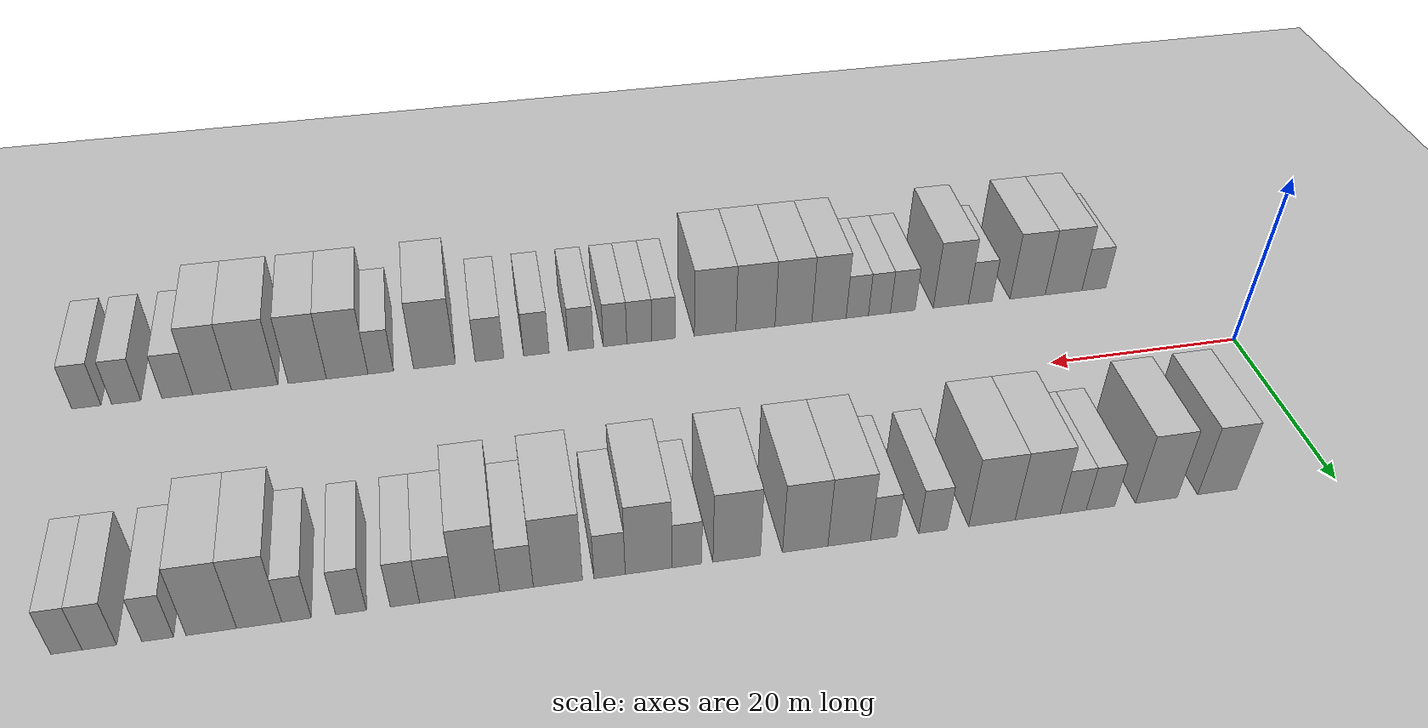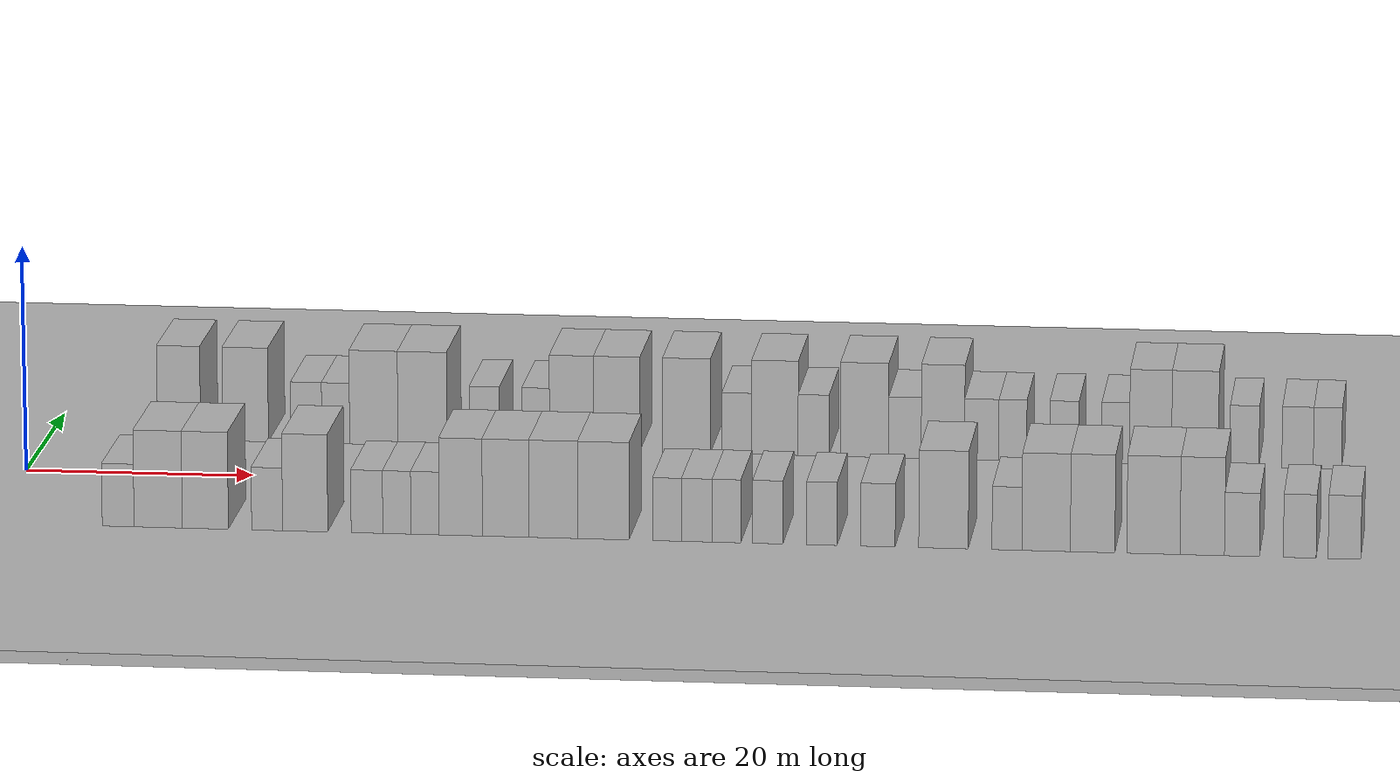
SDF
<sdf version="1.6">
 <world name="default">
  <include><name>ground_plane_1</name><uri>model://HANNAS_ground_plane</uri></include>
  <include>
   <name>ground_plane_2</name>
   <uri>model://HANNAS_ground_plane</uri>
   <pose>100 0 0  0 0 0</pose>
  </include>
  <model name="building_1">
   <static>1</static>
   <pose>11.9177 15.0000 0 0.000000 0.000000 1.570796</pose>
   <link name="link">
    <pose>0 0 4.50 0 0 0</pose>
    <collision name="collision"><geometry><box><size>10.0000 3.8354 9.0000</size></box></geometry></collision>
    <visual name="visual">
     <cast_shadows>0</cast_shadows>
     <geometry><box><size>10.0000 3.8354 9.0000</size></box></geometry>
     <material>
      <script>
       <uri>model://HANNAS_wall/materials/scripts</uri>
       <uri>model://HANNAS_wall/materials/textures</uri>
       <name>vrc/HANNAS_wall</name>
      </script>
     </material>
    </visual>
   </link>
  </model>
  <model name="building_2">
   <static>1</static>
   <pose>17.8606 15.0000 0 0.000000 0.000000 1.570796</pose>
   <link name="link">
    <pose>0 0 4.50 0 0 0</pose>
    <collision name="collision"><geometry><box><size>10.0000 4.0505 9.0000</size></box></geometry></collision>
    <visual name="visual">
     <cast_shadows>0</cast_shadows>
     <geometry><box><size>10.0000 4.0505 9.0000</size></box></geometry>
     <material>
      <script>
       <uri>model://HANNAS_wall/materials/scripts</uri>
       <uri>model://HANNAS_wall/materials/textures</uri>
       <name>vrc/HANNAS_wall</name>
      </script>
     </material>
    </visual>
   </link>
  </model>
  <model name="building_3">
   <static>1</static>
   <pose>23.2606 15.0000 0 0.000000 0.000000 1.570796</pose>
   <link name="link">
    <pose>0 0 3.00 0 0 0</pose>
    <collision name="collision"><geometry><box><size>10.0000 2.7494 6.0000</size></box></geometry></collision>
    <visual name="visual">
     <cast_shadows>0</cast_shadows>
     <geometry><box><size>10.0000 2.7494 6.0000</size></box></geometry>
     <material>
      <script>
       <uri>model://HANNAS_wall/materials/scripts</uri>
       <uri>model://HANNAS_wall/materials/textures</uri>
       <name>vrc/HANNAS_wall</name>
      </script>
     </material>
    </visual>
   </link>
  </model>
  <model name="building_4">
   <static>1</static>
   <pose>25.8726 15.0000 0 0.000000 0.000000 1.570796</pose>
   <link name="link">
    <pose>0 0 3.00 0 0 0</pose>
    <collision name="collision"><geometry><box><size>10.0000 2.4745 6.0000</size></box></geometry></collision>
    <visual name="visual">
     <cast_shadows>0</cast_shadows>
     <geometry><box><size>10.0000 2.4745 6.0000</size></box></geometry>
     <material>
      <script>
       <uri>model://HANNAS_wall/materials/scripts</uri>
       <uri>model://HANNAS_wall/materials/textures</uri>
       <name>vrc/HANNAS_wall</name>
      </script>
     </material>
    </visual>
   </link>
  </model>
  <model name="building_5">
   <static>1</static>
   <pose>29.2532 15.0000 0 0.000000 0.000000 1.570796</pose>
   <link name="link">
    <pose>0 0 4.50 0 0 0</pose>
    <collision name="collision"><geometry><box><size>10.0000 4.2869 9.0000</size></box></geometry></collision>
    <visual name="visual">
     <cast_shadows>0</cast_shadows>
     <geometry><box><size>10.0000 4.2869 9.0000</size></box></geometry>
     <material>
      <script>
       <uri>model://HANNAS_wall/materials/scripts</uri>
       <uri>model://HANNAS_wall/materials/textures</uri>
       <name>vrc/HANNAS_wall</name>
      </script>
     </material>
    </visual>
   </link>
  </model>
  <model name="building_6">
   <static>1</static>
   <pose>33.5742 15.0000 0 0.000000 0.000000 1.570796</pose>
   <link name="link">
    <pose>0 0 4.50 0 0 0</pose>
    <collision name="collision"><geometry><box><size>10.0000 4.3551 9.0000</size></box></geometry></collision>
    <visual name="visual">
     <cast_shadows>0</cast_shadows>
     <geometry><box><size>10.0000 4.3551 9.0000</size></box></geometry>
     <material>
      <script>
       <uri>model://HANNAS_wall/materials/scripts</uri>
       <uri>model://HANNAS_wall/materials/textures</uri>
       <name>vrc/HANNAS_wall</name>
      </script>
     </material>
    </visual>
   </link>
  </model>
  <model name="building_7">
   <static>1</static>
   <pose>39.0809 15.0000 0 0.000000 0.000000 1.570796</pose>
   <link name="link">
    <pose>0 0 3.00 0 0 0</pose>
    <collision name="collision"><geometry><box><size>10.0000 2.6583 6.0000</size></box></geometry></collision>
    <visual name="visual">
     <cast_shadows>0</cast_shadows>
     <geometry><box><size>10.0000 2.6583 6.0000</size></box></geometry>
     <material>
      <script>
       <uri>model://HANNAS_wall/materials/scripts</uri>
       <uri>model://HANNAS_wall/materials/textures</uri>
       <name>vrc/HANNAS_wall</name>
      </script>
     </material>
    </visual>
   </link>
  </model>
  <model name="building_8">
   <static>1</static>
   <pose>43.6283 15.0000 0 0.000000 0.000000 1.570796</pose>
   <link name="link">
    <pose>0 0 3.00 0 0 0</pose>
    <collision name="collision"><geometry><box><size>10.0000 2.4365 6.0000</size></box></geometry></collision>
    <visual name="visual">
     <cast_shadows>0</cast_shadows>
     <geometry><box><size>10.0000 2.4365 6.0000</size></box></geometry>
     <material>
      <script>
       <uri>model://HANNAS_wall/materials/scripts</uri>
       <uri>model://HANNAS_wall/materials/textures</uri>
       <name>vrc/HANNAS_wall</name>
      </script>
     </material>
    </visual>
   </link>
  </model>
  <model name="building_9">
   <static>1</static>
   <pose>46.7933 15.0000 0 0.000000 0.000000 1.570796</pose>
   <link name="link">
    <pose>0 0 4.50 0 0 0</pose>
    <collision name="collision"><geometry><box><size>10.0000 3.8934 9.0000</size></box></geometry></collision>
    <visual name="visual">
     <cast_shadows>0</cast_shadows>
     <geometry><box><size>10.0000 3.8934 9.0000</size></box></geometry>
     <material>
      <script>
       <uri>model://HANNAS_wall/materials/scripts</uri>
       <uri>model://HANNAS_wall/materials/textures</uri>
       <name>vrc/HANNAS_wall</name>
      </script>
     </material>
    </visual>
   </link>
  </model>
  <model name="building_10">
   <static>1</static>
   <pose>50.7917 15.0000 0 0.000000 0.000000 1.570796</pose>
   <link name="link">
    <pose>0 0 4.50 0 0 0</pose>
    <collision name="collision"><geometry><box><size>10.0000 4.1034 9.0000</size></box></geometry></collision>
    <visual name="visual">
     <cast_shadows>0</cast_shadows>
     <geometry><box><size>10.0000 4.1034 9.0000</size></box></geometry>
     <material>
      <script>
       <uri>model://HANNAS_wall/materials/scripts</uri>
       <uri>model://HANNAS_wall/materials/textures</uri>
       <name>vrc/HANNAS_wall</name>
      </script>
     </material>
    </visual>
   </link>
  </model>
  <model name="building_11">
   <static>1</static>
   <pose>56.9560 15.0000 0 0.000000 0.000000 1.570796</pose>
   <link name="link">
    <pose>0 0 4.50 0 0 0</pose>
    <collision name="collision"><geometry><box><size>10.0000 4.2253 9.0000</size></box></geometry></collision>
    <visual name="visual">
     <cast_shadows>0</cast_shadows>
     <geometry><box><size>10.0000 4.2253 9.0000</size></box></geometry>
     <material>
      <script>
       <uri>model://HANNAS_wall/materials/scripts</uri>
       <uri>model://HANNAS_wall/materials/textures</uri>
       <name>vrc/HANNAS_wall</name>
      </script>
     </material>
    </visual>
   </link>
  </model>
  <model name="building_12">
   <static>1</static>
   <pose>61.3837 15.0000 0 0.000000 0.000000 1.570796</pose>
   <link name="link">
    <pose>0 0 3.00 0 0 0</pose>
    <collision name="collision"><geometry><box><size>10.0000 2.6300 6.0000</size></box></geometry></collision>
    <visual name="visual">
     <cast_shadows>0</cast_shadows>
     <geometry><box><size>10.0000 2.6300 6.0000</size></box></geometry>
     <material>
      <script>
       <uri>model://HANNAS_wall/materials/scripts</uri>
       <uri>model://HANNAS_wall/materials/textures</uri>
       <name>vrc/HANNAS_wall</name>
      </script>
     </material>
    </visual>
   </link>
  </model>
  <model name="building_13">
   <static>1</static>
   <pose>64.7471 15.0000 0 0.000000 0.000000 1.570796</pose>
   <link name="link">
    <pose>0 0 4.50 0 0 0</pose>
    <collision name="collision"><geometry><box><size>10.0000 4.0969 9.0000</size></box></geometry></collision>
    <visual name="visual">
     <cast_shadows>0</cast_shadows>
     <geometry><box><size>10.0000 4.0969 9.0000</size></box></geometry>
     <material>
      <script>
       <uri>model://HANNAS_wall/materials/scripts</uri>
       <uri>model://HANNAS_wall/materials/textures</uri>
       <name>vrc/HANNAS_wall</name>
      </script>
     </material>
    </visual>
   </link>
  </model>
  <model name="building_14">
   <static>1</static>
   <pose>68.1561 15.0000 0 0.000000 0.000000 1.570796</pose>
   <link name="link">
    <pose>0 0 3.00 0 0 0</pose>
    <collision name="collision"><geometry><box><size>10.0000 2.7211 6.0000</size></box></geometry></collision>
    <visual name="visual">
     <cast_shadows>0</cast_shadows>
     <geometry><box><size>10.0000 2.7211 6.0000</size></box></geometry>
     <material>
      <script>
       <uri>model://HANNAS_wall/materials/scripts</uri>
       <uri>model://HANNAS_wall/materials/textures</uri>
       <name>vrc/HANNAS_wall</name>
      </script>
     </material>
    </visual>
   </link>
  </model>
  <model name="building_15">
   <static>1</static>
   <pose>72.6376 15.0000 0 0.000000 0.000000 1.570796</pose>
   <link name="link">
    <pose>0 0 4.50 0 0 0</pose>
    <collision name="collision"><geometry><box><size>10.0000 4.2419 9.0000</size></box></geometry></collision>
    <visual name="visual">
     <cast_shadows>0</cast_shadows>
     <geometry><box><size>10.0000 4.2419 9.0000</size></box></geometry>
     <material>
      <script>
       <uri>model://HANNAS_wall/materials/scripts</uri>
       <uri>model://HANNAS_wall/materials/textures</uri>
       <name>vrc/HANNAS_wall</name>
      </script>
     </material>
    </visual>
   </link>
  </model>
  <model name="building_16">
   <static>1</static>
   <pose>76.1897 15.0000 0 0.000000 0.000000 1.570796</pose>
   <link name="link">
    <pose>0 0 3.00 0 0 0</pose>
    <collision name="collision"><geometry><box><size>10.0000 2.8624 6.0000</size></box></geometry></collision>
    <visual name="visual">
     <cast_shadows>0</cast_shadows>
     <geometry><box><size>10.0000 2.8624 6.0000</size></box></geometry>
     <material>
      <script>
       <uri>model://HANNAS_wall/materials/scripts</uri>
       <uri>model://HANNAS_wall/materials/textures</uri>
       <name>vrc/HANNAS_wall</name>
      </script>
     </material>
    </visual>
   </link>
  </model>
  <model name="building_17">
   <static>1</static>
   <pose>79.5258 15.0000 0 0.000000 0.000000 1.570796</pose>
   <link name="link">
    <pose>0 0 4.50 0 0 0</pose>
    <collision name="collision"><geometry><box><size>10.0000 3.8097 9.0000</size></box></geometry></collision>
    <visual name="visual">
     <cast_shadows>0</cast_shadows>
     <geometry><box><size>10.0000 3.8097 9.0000</size></box></geometry>
     <material>
      <script>
       <uri>model://HANNAS_wall/materials/scripts</uri>
       <uri>model://HANNAS_wall/materials/textures</uri>
       <name>vrc/HANNAS_wall</name>
      </script>
     </material>
    </visual>
   </link>
  </model>
  <model name="building_18">
   <static>1</static>
   <pose>82.9254 15.0000 0 0.000000 0.000000 1.570796</pose>
   <link name="link">
    <pose>0 0 3.00 0 0 0</pose>
    <collision name="collision"><geometry><box><size>10.0000 2.9894 6.0000</size></box></geometry></collision>
    <visual name="visual">
     <cast_shadows>0</cast_shadows>
     <geometry><box><size>10.0000 2.9894 6.0000</size></box></geometry>
     <material>
      <script>
       <uri>model://HANNAS_wall/materials/scripts</uri>
       <uri>model://HANNAS_wall/materials/textures</uri>
       <name>vrc/HANNAS_wall</name>
      </script>
     </material>
    </visual>
   </link>
  </model>
  <model name="building_19">
   <static>1</static>
   <pose>85.6485 15.0000 0 0.000000 0.000000 1.570796</pose>
   <link name="link">
    <pose>0 0 3.00 0 0 0</pose>
    <collision name="collision"><geometry><box><size>10.0000 2.4570 6.0000</size></box></geometry></collision>
    <visual name="visual">
     <cast_shadows>0</cast_shadows>
     <geometry><box><size>10.0000 2.4570 6.0000</size></box></geometry>
     <material>
      <script>
       <uri>model://HANNAS_wall/materials/scripts</uri>
       <uri>model://HANNAS_wall/materials/textures</uri>
       <name>vrc/HANNAS_wall</name>
      </script>
     </material>
    </visual>
   </link>
  </model>
  <model name="building_20">
   <static>1</static>
   <pose>90.1554 15.0000 0 0.000000 0.000000 1.570796</pose>
   <link name="link">
    <pose>0 0 3.00 0 0 0</pose>
    <collision name="collision"><geometry><box><size>10.0000 2.5568 6.0000</size></box></geometry></collision>
    <visual name="visual">
     <cast_shadows>0</cast_shadows>
     <geometry><box><size>10.0000 2.5568 6.0000</size></box></geometry>
     <material>
      <script>
       <uri>model://HANNAS_wall/materials/scripts</uri>
       <uri>model://HANNAS_wall/materials/textures</uri>
       <name>vrc/HANNAS_wall</name>
      </script>
     </material>
    </visual>
   </link>
  </model>
  <model name="building_21">
   <static>1</static>
   <pose>94.6502 15.0000 0 0.000000 0.000000 1.570796</pose>
   <link name="link">
    <pose>0 0 3.00 0 0 0</pose>
    <collision name="collision"><geometry><box><size>10.0000 2.4329 6.0000</size></box></geometry></collision>
    <visual name="visual">
     <cast_shadows>0</cast_shadows>
     <geometry><box><size>10.0000 2.4329 6.0000</size></box></geometry>
     <material>
      <script>
       <uri>model://HANNAS_wall/materials/scripts</uri>
       <uri>model://HANNAS_wall/materials/textures</uri>
       <name>vrc/HANNAS_wall</name>
      </script>
     </material>
    </visual>
   </link>
  </model>
  <model name="building_22">
   <static>1</static>
   <pose>97.7045 15.0000 0 0.000000 0.000000 1.570796</pose>
   <link name="link">
    <pose>0 0 4.50 0 0 0</pose>
    <collision name="collision"><geometry><box><size>10.0000 3.6756 9.0000</size></box></geometry></collision>
    <visual name="visual">
     <cast_shadows>0</cast_shadows>
     <geometry><box><size>10.0000 3.6756 9.0000</size></box></geometry>
     <material>
      <script>
       <uri>model://HANNAS_wall/materials/scripts</uri>
       <uri>model://HANNAS_wall/materials/textures</uri>
       <name>vrc/HANNAS_wall</name>
      </script>
     </material>
    </visual>
   </link>
  </model>
  <model name="building_23">
   <static>1</static>
   <pose>101.5891 15.0000 0 0.000000 0.000000 1.570796</pose>
   <link name="link">
    <pose>0 0 4.50 0 0 0</pose>
    <collision name="collision"><geometry><box><size>10.0000 4.0937 9.0000</size></box></geometry></collision>
    <visual name="visual">
     <cast_shadows>0</cast_shadows>
     <geometry><box><size>10.0000 4.0937 9.0000</size></box></geometry>
     <material>
      <script>
       <uri>model://HANNAS_wall/materials/scripts</uri>
       <uri>model://HANNAS_wall/materials/textures</uri>
       <name>vrc/HANNAS_wall</name>
      </script>
     </material>
    </visual>
   </link>
  </model>
  <model name="building_24">
   <static>1</static>
   <pose>105.9074 15.0000 0 0.000000 0.000000 1.570796</pose>
   <link name="link">
    <pose>0 0 3.00 0 0 0</pose>
    <collision name="collision"><geometry><box><size>10.0000 2.5429 6.0000</size></box></geometry></collision>
    <visual name="visual">
     <cast_shadows>0</cast_shadows>
     <geometry><box><size>10.0000 2.5429 6.0000</size></box></geometry>
     <material>
      <script>
       <uri>model://HANNAS_wall/materials/scripts</uri>
       <uri>model://HANNAS_wall/materials/textures</uri>
       <name>vrc/HANNAS_wall</name>
      </script>
     </material>
    </visual>
   </link>
  </model>
  <model name="building_25">
   <static>1</static>
   <pose>110.5502 15.0000 0 0.000000 0.000000 1.570796</pose>
   <link name="link">
    <pose>0 0 3.00 0 0 0</pose>
    <collision name="collision"><geometry><box><size>10.0000 2.7427 6.0000</size></box></geometry></collision>
    <visual name="visual">
     <cast_shadows>0</cast_shadows>
     <geometry><box><size>10.0000 2.7427 6.0000</size></box></geometry>
     <material>
      <script>
       <uri>model://HANNAS_wall/materials/scripts</uri>
       <uri>model://HANNAS_wall/materials/textures</uri>
       <name>vrc/HANNAS_wall</name>
      </script>
     </material>
    </visual>
   </link>
  </model>
  <model name="building_26">
   <static>1</static>
   <pose>113.1542 15.0000 0 0.000000 0.000000 1.570796</pose>
   <link name="link">
    <pose>0 0 3.00 0 0 0</pose>
    <collision name="collision"><geometry><box><size>10.0000 2.4653 6.0000</size></box></geometry></collision>
    <visual name="visual">
     <cast_shadows>0</cast_shadows>
     <geometry><box><size>10.0000 2.4653 6.0000</size></box></geometry>
     <material>
      <script>
       <uri>model://HANNAS_wall/materials/scripts</uri>
       <uri>model://HANNAS_wall/materials/textures</uri>
       <name>vrc/HANNAS_wall</name>
      </script>
     </material>
    </visual>
   </link>
  </model>
  <model name="building_52">
   <static>1</static>
   <pose>11.3738 -15.0000 0 0.000000 0.000000 1.570796</pose>
   <link name="link">
    <pose>0 0 3.00 0 0 0</pose>
    <collision name="collision"><geometry><box><size>10.0000 2.7475 6.0000</size></box></geometry></collision>
    <visual name="visual">
     <cast_shadows>0</cast_shadows>
     <geometry><box><size>10.0000 2.7475 6.0000</size></box></geometry>
     <material>
      <script>
       <uri>model://HANNAS_wall/materials/scripts</uri>
       <uri>model://HANNAS_wall/materials/textures</uri>
       <name>vrc/HANNAS_wall</name>
      </script>
     </material>
    </visual>
   </link>
  </model>
  <model name="building_53">
   <static>1</static>
   <pose>14.8209 -15.0000 0 0.000000 0.000000 1.570796</pose>
   <link name="link">
    <pose>0 0 4.50 0 0 0</pose>
    <collision name="collision"><geometry><box><size>10.0000 4.1468 9.0000</size></box></geometry></collision>
    <visual name="visual">
     <cast_shadows>0</cast_shadows>
     <geometry><box><size>10.0000 4.1468 9.0000</size></box></geometry>
     <material>
      <script>
       <uri>model://HANNAS_wall/materials/scripts</uri>
       <uri>model://HANNAS_wall/materials/textures</uri>
       <name>vrc/HANNAS_wall</name>
      </script>
     </material>
    </visual>
   </link>
  </model>
  <model name="building_54">
   <static>1</static>
   <pose>18.8767 -15.0000 0 0.000000 0.000000 1.570796</pose>
   <link name="link">
    <pose>0 0 4.50 0 0 0</pose>
    <collision name="collision"><geometry><box><size>10.0000 3.9647 9.0000</size></box></geometry></collision>
    <visual name="visual">
     <cast_shadows>0</cast_shadows>
     <geometry><box><size>10.0000 3.9647 9.0000</size></box></geometry>
     <material>
      <script>
       <uri>model://HANNAS_wall/materials/scripts</uri>
       <uri>model://HANNAS_wall/materials/textures</uri>
       <name>vrc/HANNAS_wall</name>
      </script>
     </material>
    </visual>
   </link>
  </model>
  <model name="building_55">
   <static>1</static>
   <pose>24.1866 -15.0000 0 0.000000 0.000000 1.570796</pose>
   <link name="link">
    <pose>0 0 3.00 0 0 0</pose>
    <collision name="collision"><geometry><box><size>10.0000 2.6551 6.0000</size></box></geometry></collision>
    <visual name="visual">
     <cast_shadows>0</cast_shadows>
     <geometry><box><size>10.0000 2.6551 6.0000</size></box></geometry>
     <material>
      <script>
       <uri>model://HANNAS_wall/materials/scripts</uri>
       <uri>model://HANNAS_wall/materials/textures</uri>
       <name>vrc/HANNAS_wall</name>
      </script>
     </material>
    </visual>
   </link>
  </model>
  <model name="building_56">
   <static>1</static>
   <pose>27.4546 -15.0000 0 0.000000 0.000000 1.570796</pose>
   <link name="link">
    <pose>0 0 4.50 0 0 0</pose>
    <collision name="collision"><geometry><box><size>10.0000 3.8810 9.0000</size></box></geometry></collision>
    <visual name="visual">
     <cast_shadows>0</cast_shadows>
     <geometry><box><size>10.0000 3.8810 9.0000</size></box></geometry>
     <material>
      <script>
       <uri>model://HANNAS_wall/materials/scripts</uri>
       <uri>model://HANNAS_wall/materials/textures</uri>
       <name>vrc/HANNAS_wall</name>
      </script>
     </material>
    </visual>
   </link>
  </model>
  <model name="building_57">
   <static>1</static>
   <pose>32.7504 -15.0000 0 0.000000 0.000000 1.570796</pose>
   <link name="link">
    <pose>0 0 3.00 0 0 0</pose>
    <collision name="collision"><geometry><box><size>10.0000 2.7106 6.0000</size></box></geometry></collision>
    <visual name="visual">
     <cast_shadows>0</cast_shadows>
     <geometry><box><size>10.0000 2.7106 6.0000</size></box></geometry>
     <material>
      <script>
       <uri>model://HANNAS_wall/materials/scripts</uri>
       <uri>model://HANNAS_wall/materials/textures</uri>
       <name>vrc/HANNAS_wall</name>
      </script>
     </material>
    </visual>
   </link>
  </model>
  <model name="building_58">
   <static>1</static>
   <pose>35.3084 -15.0000 0 0.000000 0.000000 1.570796</pose>
   <link name="link">
    <pose>0 0 3.00 0 0 0</pose>
    <collision name="collision"><geometry><box><size>10.0000 2.4053 6.0000</size></box></geometry></collision>
    <visual name="visual">
     <cast_shadows>0</cast_shadows>
     <geometry><box><size>10.0000 2.4053 6.0000</size></box></geometry>
     <material>
      <script>
       <uri>model://HANNAS_wall/materials/scripts</uri>
       <uri>model://HANNAS_wall/materials/textures</uri>
       <name>vrc/HANNAS_wall</name>
      </script>
     </material>
    </visual>
   </link>
  </model>
  <model name="building_59">
   <static>1</static>
   <pose>37.7224 -15.0000 0 0.000000 0.000000 1.570796</pose>
   <link name="link">
    <pose>0 0 3.00 0 0 0</pose>
    <collision name="collision"><geometry><box><size>10.0000 2.4227 6.0000</size></box></geometry></collision>
    <visual name="visual">
     <cast_shadows>0</cast_shadows>
     <geometry><box><size>10.0000 2.4227 6.0000</size></box></geometry>
     <material>
      <script>
       <uri>model://HANNAS_wall/materials/scripts</uri>
       <uri>model://HANNAS_wall/materials/textures</uri>
       <name>vrc/HANNAS_wall</name>
      </script>
     </material>
    </visual>
   </link>
  </model>
  <model name="building_60">
   <static>1</static>
   <pose>40.7818 -15.0000 0 0.000000 0.000000 1.570796</pose>
   <link name="link">
    <pose>0 0 4.50 0 0 0</pose>
    <collision name="collision"><geometry><box><size>10.0000 3.6961 9.0000</size></box></geometry></collision>
    <visual name="visual">
     <cast_shadows>0</cast_shadows>
     <geometry><box><size>10.0000 3.6961 9.0000</size></box></geometry>
     <material>
      <script>
       <uri>model://HANNAS_wall/materials/scripts</uri>
       <uri>model://HANNAS_wall/materials/textures</uri>
       <name>vrc/HANNAS_wall</name>
      </script>
     </material>
    </visual>
   </link>
  </model>
  <model name="building_61">
   <static>1</static>
   <pose>44.6154 -15.0000 0 0.000000 0.000000 1.570796</pose>
   <link name="link">
    <pose>0 0 4.50 0 0 0</pose>
    <collision name="collision"><geometry><box><size>10.0000 3.9710 9.0000</size></box></geometry></collision>
    <visual name="visual">
     <cast_shadows>0</cast_shadows>
     <geometry><box><size>10.0000 3.9710 9.0000</size></box></geometry>
     <material>
      <script>
       <uri>model://HANNAS_wall/materials/scripts</uri>
       <uri>model://HANNAS_wall/materials/textures</uri>
       <name>vrc/HANNAS_wall</name>
      </script>
     </material>
    </visual>
   </link>
  </model>
  <model name="building_62">
   <static>1</static>
   <pose>48.6823 -15.0000 0 0.000000 0.000000 1.570796</pose>
   <link name="link">
    <pose>0 0 4.50 0 0 0</pose>
    <collision name="collision"><geometry><box><size>10.0000 4.1629 9.0000</size></box></geometry></collision>
    <visual name="visual">
     <cast_shadows>0</cast_shadows>
     <geometry><box><size>10.0000 4.1629 9.0000</size></box></geometry>
     <material>
      <script>
       <uri>model://HANNAS_wall/materials/scripts</uri>
       <uri>model://HANNAS_wall/materials/textures</uri>
       <name>vrc/HANNAS_wall</name>
      </script>
     </material>
    </visual>
   </link>
  </model>
  <model name="building_63">
   <static>1</static>
   <pose>52.9585 -15.0000 0 0.000000 0.000000 1.570796</pose>
   <link name="link">
    <pose>0 0 4.50 0 0 0</pose>
    <collision name="collision"><geometry><box><size>10.0000 4.3895 9.0000</size></box></geometry></collision>
    <visual name="visual">
     <cast_shadows>0</cast_shadows>
     <geometry><box><size>10.0000 4.3895 9.0000</size></box></geometry>
     <material>
      <script>
       <uri>model://HANNAS_wall/materials/scripts</uri>
       <uri>model://HANNAS_wall/materials/textures</uri>
       <name>vrc/HANNAS_wall</name>
      </script>
     </material>
    </visual>
   </link>
  </model>
  <model name="building_64">
   <static>1</static>
   <pose>58.3817 -15.0000 0 0.000000 0.000000 1.570796</pose>
   <link name="link">
    <pose>0 0 3.00 0 0 0</pose>
    <collision name="collision"><geometry><box><size>10.0000 2.4570 6.0000</size></box></geometry></collision>
    <visual name="visual">
     <cast_shadows>0</cast_shadows>
     <geometry><box><size>10.0000 2.4570 6.0000</size></box></geometry>
     <material>
      <script>
       <uri>model://HANNAS_wall/materials/scripts</uri>
       <uri>model://HANNAS_wall/materials/textures</uri>
       <name>vrc/HANNAS_wall</name>
      </script>
     </material>
    </visual>
   </link>
  </model>
  <model name="building_65">
   <static>1</static>
   <pose>60.9145 -15.0000 0 0.000000 0.000000 1.570796</pose>
   <link name="link">
    <pose>0 0 3.00 0 0 0</pose>
    <collision name="collision"><geometry><box><size>10.0000 2.6086 6.0000</size></box></geometry></collision>
    <visual name="visual">
     <cast_shadows>0</cast_shadows>
     <geometry><box><size>10.0000 2.6086 6.0000</size></box></geometry>
     <material>
      <script>
       <uri>model://HANNAS_wall/materials/scripts</uri>
       <uri>model://HANNAS_wall/materials/textures</uri>
       <name>vrc/HANNAS_wall</name>
      </script>
     </material>
    </visual>
   </link>
  </model>
  <model name="building_66">
   <static>1</static>
   <pose>63.4383 -15.0000 0 0.000000 0.000000 1.570796</pose>
   <link name="link">
    <pose>0 0 3.00 0 0 0</pose>
    <collision name="collision"><geometry><box><size>10.0000 2.4390 6.0000</size></box></geometry></collision>
    <visual name="visual">
     <cast_shadows>0</cast_shadows>
     <geometry><box><size>10.0000 2.4390 6.0000</size></box></geometry>
     <material>
      <script>
       <uri>model://HANNAS_wall/materials/scripts</uri>
       <uri>model://HANNAS_wall/materials/textures</uri>
       <name>vrc/HANNAS_wall</name>
      </script>
     </material>
    </visual>
   </link>
  </model>
  <model name="building_67">
   <static>1</static>
   <pose>66.9491 -15.0000 0 0.000000 0.000000 1.570796</pose>
   <link name="link">
    <pose>0 0 3.00 0 0 0</pose>
    <collision name="collision"><geometry><box><size>10.0000 2.5826 6.0000</size></box></geometry></collision>
    <visual name="visual">
     <cast_shadows>0</cast_shadows>
     <geometry><box><size>10.0000 2.5826 6.0000</size></box></geometry>
     <material>
      <script>
       <uri>model://HANNAS_wall/materials/scripts</uri>
       <uri>model://HANNAS_wall/materials/textures</uri>
       <name>vrc/HANNAS_wall</name>
      </script>
     </material>
    </visual>
   </link>
  </model>
  <model name="building_68">
   <static>1</static>
   <pose>71.5431 -15.0000 0 0.000000 0.000000 1.570796</pose>
   <link name="link">
    <pose>0 0 3.00 0 0 0</pose>
    <collision name="collision"><geometry><box><size>10.0000 2.6054 6.0000</size></box></geometry></collision>
    <visual name="visual">
     <cast_shadows>0</cast_shadows>
     <geometry><box><size>10.0000 2.6054 6.0000</size></box></geometry>
     <material>
      <script>
       <uri>model://HANNAS_wall/materials/scripts</uri>
       <uri>model://HANNAS_wall/materials/textures</uri>
       <name>vrc/HANNAS_wall</name>
      </script>
     </material>
    </visual>
   </link>
  </model>
  <model name="building_69">
   <static>1</static>
   <pose>76.2995 -15.0000 0 0.000000 0.000000 1.570796</pose>
   <link name="link">
    <pose>0 0 3.00 0 0 0</pose>
    <collision name="collision"><geometry><box><size>10.0000 2.9075 6.0000</size></box></geometry></collision>
    <visual name="visual">
     <cast_shadows>0</cast_shadows>
     <geometry><box><size>10.0000 2.9075 6.0000</size></box></geometry>
     <material>
      <script>
       <uri>model://HANNAS_wall/materials/scripts</uri>
       <uri>model://HANNAS_wall/materials/textures</uri>
       <name>vrc/HANNAS_wall</name>
      </script>
     </material>
    </visual>
   </link>
  </model>
  <model name="building_70">
   <static>1</static>
   <pose>81.8507 -15.0000 0 0.000000 0.000000 1.570796</pose>
   <link name="link">
    <pose>0 0 4.50 0 0 0</pose>
    <collision name="collision"><geometry><box><size>10.0000 4.1948 9.0000</size></box></geometry></collision>
    <visual name="visual">
     <cast_shadows>0</cast_shadows>
     <geometry><box><size>10.0000 4.1948 9.0000</size></box></geometry>
     <material>
      <script>
       <uri>model://HANNAS_wall/materials/scripts</uri>
       <uri>model://HANNAS_wall/materials/textures</uri>
       <name>vrc/HANNAS_wall</name>
      </script>
     </material>
    </visual>
   </link>
  </model>
  <model name="building_71">
   <static>1</static>
   <pose>87.2132 -15.0000 0 0.000000 0.000000 1.570796</pose>
   <link name="link">
    <pose>0 0 3.00 0 0 0</pose>
    <collision name="collision"><geometry><box><size>10.0000 2.5302 6.0000</size></box></geometry></collision>
    <visual name="visual">
     <cast_shadows>0</cast_shadows>
     <geometry><box><size>10.0000 2.5302 6.0000</size></box></geometry>
     <material>
      <script>
       <uri>model://HANNAS_wall/materials/scripts</uri>
       <uri>model://HANNAS_wall/materials/textures</uri>
       <name>vrc/HANNAS_wall</name>
      </script>
     </material>
    </visual>
   </link>
  </model>
  <model name="building_72">
   <static>1</static>
   <pose>90.5232 -15.0000 0 0.000000 0.000000 1.570796</pose>
   <link name="link">
    <pose>0 0 4.50 0 0 0</pose>
    <collision name="collision"><geometry><box><size>10.0000 4.0898 9.0000</size></box></geometry></collision>
    <visual name="visual">
     <cast_shadows>0</cast_shadows>
     <geometry><box><size>10.0000 4.0898 9.0000</size></box></geometry>
     <material>
      <script>
       <uri>model://HANNAS_wall/materials/scripts</uri>
       <uri>model://HANNAS_wall/materials/textures</uri>
       <name>vrc/HANNAS_wall</name>
      </script>
     </material>
    </visual>
   </link>
  </model>
  <model name="building_73">
   <static>1</static>
   <pose>94.4469 -15.0000 0 0.000000 0.000000 1.570796</pose>
   <link name="link">
    <pose>0 0 4.50 0 0 0</pose>
    <collision name="collision"><geometry><box><size>10.0000 3.7576 9.0000</size></box></geometry></collision>
    <visual name="visual">
     <cast_shadows>0</cast_shadows>
     <geometry><box><size>10.0000 3.7576 9.0000</size></box></geometry>
     <material>
      <script>
       <uri>model://HANNAS_wall/materials/scripts</uri>
       <uri>model://HANNAS_wall/materials/textures</uri>
       <name>vrc/HANNAS_wall</name>
      </script>
     </material>
    </visual>
   </link>
  </model>
  <model name="building_74">
   <static>1</static>
   <pose>99.5706 -15.0000 0 0.000000 0.000000 1.570796</pose>
   <link name="link">
    <pose>0 0 4.50 0 0 0</pose>
    <collision name="collision"><geometry><box><size>10.0000 4.4899 9.0000</size></box></geometry></collision>
    <visual name="visual">
     <cast_shadows>0</cast_shadows>
     <geometry><box><size>10.0000 4.4899 9.0000</size></box></geometry>
     <material>
      <script>
       <uri>model://HANNAS_wall/materials/scripts</uri>
       <uri>model://HANNAS_wall/materials/textures</uri>
       <name>vrc/HANNAS_wall</name>
      </script>
     </material>
    </visual>
   </link>
  </model>
  <model name="building_75">
   <static>1</static>
   <pose>103.6866 -15.0000 0 0.000000 0.000000 1.570796</pose>
   <link name="link">
    <pose>0 0 4.50 0 0 0</pose>
    <collision name="collision"><geometry><box><size>10.0000 3.7420 9.0000</size></box></geometry></collision>
    <visual name="visual">
     <cast_shadows>0</cast_shadows>
     <geometry><box><size>10.0000 3.7420 9.0000</size></box></geometry>
     <material>
      <script>
       <uri>model://HANNAS_wall/materials/scripts</uri>
       <uri>model://HANNAS_wall/materials/textures</uri>
       <name>vrc/HANNAS_wall</name>
      </script>
     </material>
    </visual>
   </link>
  </model>
  <model name="building_76">
   <static>1</static>
   <pose>107.0297 -15.0000 0 0.000000 0.000000 1.570796</pose>
   <link name="link">
    <pose>0 0 3.00 0 0 0</pose>
    <collision name="collision"><geometry><box><size>10.0000 2.9443 6.0000</size></box></geometry></collision>
    <visual name="visual">
     <cast_shadows>0</cast_shadows>
     <geometry><box><size>10.0000 2.9443 6.0000</size></box></geometry>
     <material>
      <script>
       <uri>model://HANNAS_wall/materials/scripts</uri>
       <uri>model://HANNAS_wall/materials/textures</uri>
       <name>vrc/HANNAS_wall</name>
      </script>
     </material>
    </visual>
   </link>
  </model>
  <model name="building_77">
   <static>1</static>
   <pose>111.8841 -15.0000 0 0.000000 0.000000 1.570796</pose>
   <link name="link">
    <pose>0 0 3.00 0 0 0</pose>
    <collision name="collision"><geometry><box><size>10.0000 2.7645 6.0000</size></box></geometry></collision>
    <visual name="visual">
     <cast_shadows>0</cast_shadows>
     <geometry><box><size>10.0000 2.7645 6.0000</size></box></geometry>
     <material>
      <script>
       <uri>model://HANNAS_wall/materials/scripts</uri>
       <uri>model://HANNAS_wall/materials/textures</uri>
       <name>vrc/HANNAS_wall</name>
      </script>
     </material>
    </visual>
   </link>
  </model>
  <model name="building_78">
   <static>1</static>
   <pose>115.6421 -15.0000 0 0.000000 0.000000 1.570796</pose>
   <link name="link">
    <pose>0 0 3.00 0 0 0</pose>
    <collision name="collision"><geometry><box><size>10.0000 2.7515 6.0000</size></box></geometry></collision>
    <visual name="visual">
     <cast_shadows>0</cast_shadows>
     <geometry><box><size>10.0000 2.7515 6.0000</size></box></geometry>
     <material>
      <script>
       <uri>model://HANNAS_wall/materials/scripts</uri>
       <uri>model://HANNAS_wall/materials/textures</uri>
       <name>vrc/HANNAS_wall</name>
      </script>
     </material>
    </visual>
   </link>
  </model>
 </world>
</sdf>
